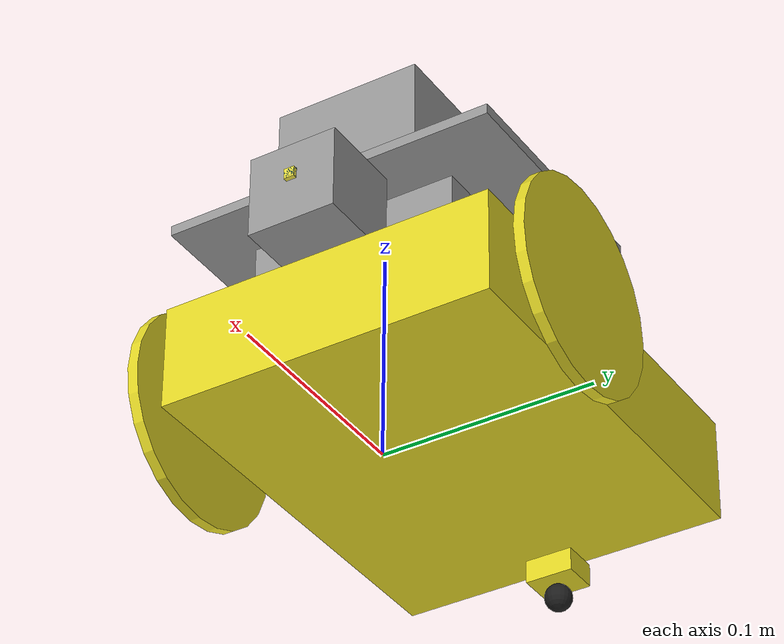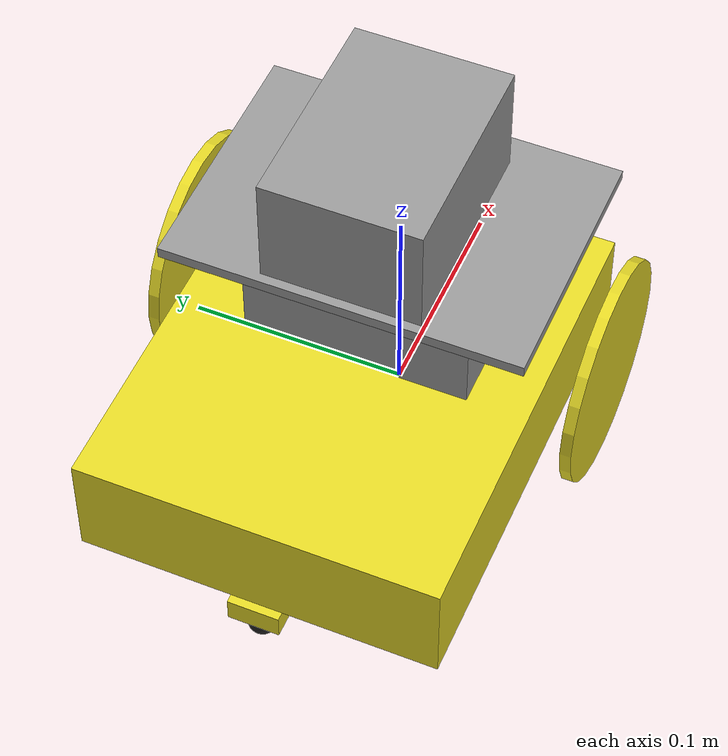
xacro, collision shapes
<?xml version="1.0"?>
<robot xmlns:xacro="http://www.ros.org/wiki/xacro" name="Puzzlebot_Hacker_Ed.">

<!-- files for gazebo costumization -->
<xacro:include filename="$(find puzzlebot_description)/urdf/jetson_lidar_ed/materials_jetson_lidar_ed.xacro" />
<xacro:include filename="$(find puzzlebot_description)/urdf/jetson_lidar_ed/parameters_jetson_lidar_ed_v1.xacro" />
<xacro:include filename="$(find puzzlebot_description)/urdf/jetson_lidar_ed/macros_jetson_lidar_ed.xacro" />
<xacro:include filename="$(find puzzlebot_description)/urdf/jetson_lidar_ed/puzzlebot_jetson_lidar_ed_v1.gazebo.xacro" />

<!--LINKS-->

<!-- Dummy link to fix robot chassis -->
    <link name="base_footprint">
    </link>

    <link name="base_link">
        <visual>
            <origin xyz="${chassis_mesh_pos_x} ${chassis_mesh_pos_y} ${chassis_mesh_pos_z}" rpy="${chassis_mesh_pos_r} ${chassis_mesh_pos_p} ${chassis_mesh_pos_w}"/>
            <geometry>
                <mesh filename="file://${mesh_puzzlebot_chassis}"/>
            </geometry>
            <material name="yellow"/>
        </visual>

        <collision>
            <origin xyz="${chassis_collision_pos_x} ${chassis_collision_pos_y} ${chassis_collision_pos_z}" rpy="${chassis_collision_pos_r} ${chassis_collision_pos_p} ${chassis_collision_pos_w}"/>
            <geometry>
                <box size="${chassis_length} ${chassis_width} ${chassis_height}"/>
            </geometry>
        </collision>

        <inertial>
            <origin xyz="-${chassis_inertia_pos_x} ${chassis_inertia_pos_y} ${chassis_inertia_pos_z}" rpy="${chassis_inertia_pos_r} ${chassis_inertia_pos_p} ${chassis_inertia_pos_w}"/>
            <mass value="${chassis_mass}"/>
            <xacro:box_inertia mass="${chassis_mass}" x="${chassis_length}" y="${chassis_width}" z="${chassis_height}" />
        </inertial>
    </link>

    <link name="wheel_left_link">
        <visual>
            <origin xyz="${wheel_mesh_pos_x} ${wheel_mesh_pos_y} ${wheel_mesh_pos_z}" rpy="${wheel_mesh_pos_r} ${wheel_mesh_pos_p} ${wheel_mesh_pos_w}" />
            <geometry>
                <mesh filename="file://${mesh_puzzlebot_wheel}"/>
            </geometry>
            <material name="yellow"/>
        </visual>

        <collision>
            <origin xyz="${wheel_collision_pos_x} ${wheel_collision_pos_y} ${wheel_collision_pos_z}" rpy="${wheel_collision_pos_r} ${wheel_collision_pos_p} ${wheel_collision_pos_w}"/>
            <geometry>
                <cylinder length="${wheel_height}" radius="${wheel_radius}" />
            </geometry>
        </collision>

        <inertial>
            <origin xyz="${wheel_inertia_pos_x} ${wheel_inertia_pos_y} ${wheel_inertia_pos_z}" rpy="${wheel_inertia_pos_r} ${wheel_inertia_pos_p} ${wheel_inertia_pos_w}"/>
            <mass value="${wheel_mass}"/>
            <xacro:cylinderical_tube_inertia r1="${wheel_radius}" r2="${wheel_radius/4.0}" height="${wheel_height}" mass="${wheel_mass}"/>
        </inertial>
    </link>

    <link name="wheel_right_link">
        <visual>
            <origin xyz="${wheel_mesh_pos_x} ${wheel_mesh_pos_y} ${wheel_mesh_pos_z}" rpy="${wheel_mesh_pos_r} -${wheel_mesh_pos_p} ${wheel_mesh_pos_w}" />
            <geometry>
                <mesh filename="file://${mesh_puzzlebot_wheel}"/>
            </geometry>
            <material name="yellow"/>
        </visual>

        <collision>
            <origin xyz="${wheel_collision_pos_x} ${wheel_collision_pos_y} ${wheel_collision_pos_z}" rpy="-${wheel_collision_pos_r} ${wheel_collision_pos_p} ${wheel_collision_pos_w}"/>
            <geometry>
                <cylinder length="${wheel_height}" radius="${wheel_radius}" />
            </geometry>
        </collision>

        <inertial>
            <origin xyz="${wheel_inertia_pos_x} ${wheel_inertia_pos_y} ${wheel_inertia_pos_z}" rpy="-${wheel_inertia_pos_r} ${wheel_inertia_pos_p} ${wheel_inertia_pos_w}"/>
            <mass value="${wheel_mass}"/>
            <xacro:cylinderical_tube_inertia r1="${wheel_radius}" r2="${wheel_radius/4.0}" height="${wheel_height}" mass="${wheel_mass}"/>
        </inertial>
    </link>

    <link name="caster_holder_link">
        <visual>
            <origin xyz="${casterholder_mesh_pos_x} ${casterholder_mesh_pos_y} ${casterholder_mesh_pos_z}" rpy="${casterholder_mesh_pos_r} ${casterholder_mesh_pos_p} ${casterholder_mesh_pos_w}"/>
            <geometry>
                <mesh filename="file://${mesh_puzzlebot_caster}"/>
            </geometry>
            <material name="yellow"/>
        </visual>

        <collision>
            <origin xyz="${casterholder_collision_pos_x} ${casterholder_collision_pos_y} ${casterholder_collision_pos_z}" rpy="${casterholder_collision_pos_r} ${casterholder_collision_pos_p} ${casterholder_collision_pos_w}"/>
            <geometry>
                <box size="${casterholder_length} ${casterholder_width} ${casterholder_height}"/>
            </geometry>
        </collision>

        <inertial>
            <origin xyz="${casterholder_inertia_pos_x} ${casterholder_inertia_pos_y} ${casterholder_inertia_pos_z}" rpy="${casterholder_inertia_pos_r} ${casterholder_inertia_pos_p} ${casterholder_inertia_pos_w}"/>
            <mass value="${casterholder_mass}"/>
            <xacro:box_inertia mass="${casterholder_mass}" x="${casterholder_length}" y="${casterholder_width}" z="${casterholder_height}" />
        </inertial>
    </link>

    <link name="wheel_caster_link">
        <collision>
            <origin xyz="${casterball_collision_pos_x} ${casterball_collision_pos_y} ${casterball_collision_pos_z}" rpy="${casterball_collision_pos_r} ${casterball_collision_pos_p} ${casterball_collision_pos_w}"/>
            <geometry>
                <sphere radius="${casterball_radius}"/>
            </geometry>
        </collision>

        <inertial>
            <origin xyz="${casterball_inertia_pos_x} ${casterball_inertia_pos_y} ${casterball_inertia_pos_z}" rpy="${casterball_inertia_pos_r} ${casterball_inertia_pos_p} ${casterball_inertia_pos_w}"/>
            <mass value="${casterball_mass}"/>
            <xacro:solid_sphere_inertia mass="${casterball_mass}" radius="${casterball_radius}" />
        </inertial>
    </link>

    <link name="motor_left_link">
        <visual>
            <origin xyz="${motor_mesh_pos_x} ${motor_mesh_pos_y} ${motor_mesh_pos_z}" rpy="${motor_mesh_pos_r} ${motor_mesh_pos_p} ${motor_mesh_pos_w}"/>
            <geometry>
                <mesh filename="file://${mesh_puzzlebot_motor_left}"/>
            </geometry>
            <material name="grey"/>
        </visual>

        <collision>
            <origin xyz="${motor_collision_pos_x} ${motor_collision_pos_y} ${motor_collision_pos_z}" rpy="${motor_collision_pos_r} ${motor_collision_pos_p} ${motor_collision_pos_w}"/>
            <geometry>
                <cylinder length="${motor_height}" radius="${motor_radius}" />
            </geometry>
        </collision>

        <inertial>
            <origin xyz="${motor_inertia_pos_x} ${motor_inertia_pos_y} ${motor_inertia_pos_z}" rpy="${motor_inertia_pos_r} ${motor_inertia_pos_p} ${motor_inertia_pos_w}"/>
            <mass value="${motor_mass}"/>
            <xacro:cylinder_inertia radius="${motor_radius}" height="${motor_height}" mass="${motor_mass}"/>
        </inertial>
    </link>

    <link name="motor_right_link">
        <visual>
            <origin xyz="${motor_mesh_pos_x} -${motor_mesh_pos_y} ${motor_mesh_pos_z}" rpy="${motor_mesh_pos_r} ${-motor_mesh_pos_p} ${motor_mesh_pos_w+PI}"/>
            <geometry>
                <mesh filename="file://${mesh_puzzlebot_motor_right}"/>
            </geometry>
            <material name="grey"/>
        </visual>

        <collision>
            <origin xyz="${motor_collision_pos_x} ${motor_collision_pos_y} ${motor_collision_pos_z}" rpy="${motor_collision_pos_r} ${motor_collision_pos_p} ${motor_collision_pos_w}"/>
            <geometry>
                <cylinder length="${motor_height}" radius="${motor_radius}" />
            </geometry>
        </collision>

        <inertial>
            <origin xyz="${motor_inertia_pos_x} -${motor_inertia_pos_y} ${motor_inertia_pos_z}" rpy="${motor_inertia_pos_r} ${motor_inertia_pos_p} ${motor_inertia_pos_w}"/>
            <mass value="${motor_mass}"/>
            <xacro:cylinder_inertia radius="${motor_radius}" height="${motor_height}" mass="${motor_mass}"/>
        </inertial>
    </link>

    <link name="powerbank_link">
        <visual>
            <origin xyz="${powerbank_mesh_pos_x} ${powerbank_mesh_pos_y} ${powerbank_mesh_pos_z}" rpy="${powerbank_mesh_pos_r} ${powerbank_mesh_pos_p} ${powerbank_mesh_pos_w}"/>
            <geometry>
                <mesh filename="file://${mesh_puzzlebot_battery}"/>
            </geometry>
            <material name="black"/>
        </visual>

        <collision>
            <origin xyz="${powerbank_collision_pos_x} ${powerbank_collision_pos_y} ${powerbank_collision_pos_z}" rpy="${powerbank_collision_pos_r} ${powerbank_collision_pos_p} ${powerbank_collision_pos_w}"/>
            <geometry>
                <box size="${powerbank_length} ${powerbank_width} ${powerbank_height}"/>
            </geometry>
        </collision>

        <inertial>
            <origin xyz="${powerbank_inertia_pos_x} ${powerbank_inertia_pos_y} ${powerbank_inertia_pos_z}" rpy="${powerbank_inertia_pos_r} ${powerbank_inertia_pos_p} ${powerbank_inertia_pos_w}"/>
            <mass value="${powerbank_mass}"/>
            <xacro:box_inertia mass="${powerbank_mass}" x="${powerbank_length}" y="${powerbank_width}" z="${powerbank_height}" />
        </inertial>
    </link>

    <link name="jetson_link">
        <visual>
            <origin xyz="${jetson_mesh_pos_x} ${jetson_mesh_pos_y} ${jetson_mesh_pos_z}" rpy="${jetson_mesh_pos_r} ${jetson_mesh_pos_p} ${jetson_mesh_pos_w}"/>
            <geometry>
                <mesh filename="file://${mesh_puzzlebot_jetson}"/>
            </geometry>
            <material name="grey"/>
        </visual>

        <collision>
            <origin xyz="${jetson_collision_pos_x} ${jetson_collision_pos_y} ${jetson_collision_pos_z}" rpy="${jetson_collision_pos_r} ${jetson_collision_pos_p} ${jetson_collision_pos_w}"/>
            <geometry>
                <box size="${jetson_length} ${jetson_width} ${jetson_height+jetson_offset}"/>
            </geometry>
        </collision>

        <inertial>
            <origin xyz="${jetson_inertia_pos_x} ${jetson_inertia_pos_y} ${jetson_inertia_pos_z}" rpy="${jetson_inertia_pos_r} ${jetson_inertia_pos_p} ${jetson_inertia_pos_w}"/>
            <mass value="${jetson_mass}"/>
            <xacro:box_inertia mass="${jetson_mass}" x="${jetson_length}" y="${jetson_width}" z="${jetson_height}" />
        </inertial>
    </link>

    <link name="camera_base_link">
        <visual>
            <origin xyz="${camera_base_mesh_pos_x} ${camera_base_mesh_pos_y} ${camera_base_mesh_pos_z}" rpy="${camera_base_mesh_pos_r} ${camera_base_mesh_pos_p} ${camera_base_mesh_pos_w}"/>
            <geometry>
                <mesh filename="file://${mesh_puzzlebot_camera}"/>
            </geometry>
            <material name="grey"/>
        </visual>

        <collision>
            <origin xyz="${camera_base_collision_pos_x} ${camera_base_collision_pos_y} ${camera_base_collision_pos_z}" rpy="${camera_base_collision_pos_r} ${camera_base_collision_pos_p} ${camera_base_collision_pos_w}"/>
            <geometry>
                <box size="${camera_base_length} ${camera_base_width} ${camera_base_height}"/>
            </geometry>
        </collision>

        <inertial>
            <origin xyz="${camera_base_inertia_pos_x} ${camera_base_inertia_pos_y} ${camera_base_inertia_pos_z}" rpy="${camera_base_inertia_pos_r} ${camera_base_inertia_pos_p} ${camera_base_inertia_pos_w}"/>
            <mass value="${camera_base_mass}"/>
            <xacro:box_inertia mass="${camera_base_mass}" x="${camera_base_length}" y="${camera_base_width}" z="${camera_base_height}" />
        </inertial>
    </link>

    <link name="camera_link">
        <collision>
            <origin xyz="${camera_collision_pos_x} ${camera_collision_pos_y} ${camera_collision_pos_z}" rpy="${camera_collision_pos_r} ${camera_collision_pos_p} ${camera_collision_pos_w}"/>
            <geometry>
                <box size="${camera_length} ${camera_width} ${camera_height}"/>
            </geometry>
        </collision>

        <inertial>
            <origin xyz="${camera_inertia_pos_x} ${camera_inertia_pos_y} ${camera_inertia_pos_z}" rpy="${camera_inertia_pos_r} ${camera_inertia_pos_p} ${camera_inertia_pos_w}"/>
            <mass value="${camera_mass}"/>
            <xacro:box_inertia mass="${camera_mass}" x="${camera_length}" y="${camera_width}" z="${camera_height}" />
        </inertial>
    </link>

    <link name="camera_link_optical">
        <collision>
            <origin xyz="${camera_collision_pos_x} ${camera_collision_pos_y} ${camera_collision_pos_z}" rpy="${camera_collision_pos_r} ${camera_collision_pos_p} ${camera_collision_pos_w}"/>
            <geometry>
                <box size="${camera_length} ${camera_width} ${camera_height}"/>
            </geometry>
        </collision>

        <inertial>
            <origin xyz="${camera_inertia_pos_x} ${camera_inertia_pos_y} ${camera_inertia_pos_z}" rpy="${camera_inertia_pos_r} ${camera_inertia_pos_p} ${camera_inertia_pos_w}"/>
            <mass value="${camera_mass}"/>
            <xacro:box_inertia mass="${camera_mass}" x="${camera_length}" y="${camera_width}" z="${camera_height}" />
        </inertial>
    </link>

    <link name="lidar_base_link">
        <visual>
            <origin xyz="${lidar_base_mesh_pos_x} ${lidar_base_mesh_pos_y} ${lidar_base_mesh_pos_z}" rpy="${lidar_base_mesh_pos_r} ${lidar_base_mesh_pos_p} ${lidar_base_mesh_pos_w}"/>
            <geometry>
                <mesh filename="file://${mesh_puzzlebot_lidar_base}"/>
            </geometry>
            <material name="grey"/>
        </visual>

        <collision>
            <origin xyz="${lidar_base_collision_pos_x} ${lidar_base_collision_pos_y} ${lidar_base_collision_pos_z}" rpy="${lidar_base_collision_pos_r} ${lidar_base_collision_pos_p} ${lidar_base_collision_pos_w}"/>
            <geometry>
                <box size="${lidar_base_length} ${lidar_base_width} ${lidar_base_height}"/>
            </geometry>
        </collision>

        <inertial>
            <origin xyz="${lidar_base_inertia_pos_x} ${lidar_base_inertia_pos_y} ${lidar_base_inertia_pos_z}" rpy="${lidar_base_inertia_pos_r} ${lidar_base_inertia_pos_p} ${lidar_base_inertia_pos_w}"/>
            <mass value="${lidar_base_mass}"/>
            <xacro:box_inertia mass="${lidar_base_mass}" x="${lidar_base_length}" y="${lidar_base_width}" z="${lidar_base_height}" />
        </inertial>
    </link>

    <link name="lidar_link">
        <visual>
            <origin xyz="${lidar_mesh_pos_x} ${lidar_mesh_pos_y} ${lidar_mesh_pos_z}" rpy="${lidar_mesh_pos_r} ${lidar_mesh_pos_p} ${lidar_mesh_pos_w}"/>
            <geometry>
                <mesh filename="file://${mesh_puzzlebot_lidar_sensor}"/>
            </geometry>
            <material name="grey"/>
        </visual>

        <collision>
            <origin xyz="${lidar_collision_pos_x} ${lidar_collision_pos_y} ${lidar_collision_pos_z}" rpy="${lidar_collision_pos_r} ${lidar_collision_pos_p} ${lidar_collision_pos_w}"/>
            <geometry>
                <box size="${lidar_length} ${lidar_width} ${lidar_height}"/>
            </geometry>
        </collision>

        <inertial>
            <origin xyz="${lidar_inertia_pos_x} ${lidar_inertia_pos_y} ${lidar_inertia_pos_z}" rpy="${lidar_inertia_pos_r} ${lidar_inertia_pos_p} ${lidar_inertia_pos_w}"/>
            <mass value="${lidar_mass}"/>
            <xacro:box_inertia mass="${lidar_mass}" x="${lidar_length}" y="${lidar_width}" z="${lidar_height}" />
        </inertial>
    </link>

<!--JOINTS-->

    <joint name="chassis_joint" type="fixed">
        <parent link="base_footprint"/>
        <child link="base_link"/>
        <origin xyz="${chassis_pos_x} ${chassis_pos_y} ${chassis_pos_z}" rpy="${chassis_pos_r} ${chassis_pos_p} ${chassis_pos_w}"/>
    </joint>

    <joint name="motor_left_joint" type="fixed">
        <parent link="base_link"/>
        <child link="motor_left_link"/>
        <origin xyz="${motor_pos_x} ${motor_pos_y} ${motor_pos_z}" rpy="${motor_pos_r} ${motor_pos_p} ${motor_pos_w}"/>
    </joint>

    <joint name="motor_right_joint" type="fixed">
        <parent link="base_link"/>
        <child link="motor_right_link"/>
        <origin xyz="${motor_pos_x} -${motor_pos_y} ${motor_pos_z}" rpy="${motor_pos_r} ${motor_pos_p} ${motor_pos_w}"/>
    </joint>

    <joint name="powerbank_joint" type="fixed">
        <parent link="base_link"/>
        <child link="powerbank_link"/>
        <origin xyz="-${powerbank_pos_x} ${powerbank_pos_y} -${powerbank_pos_z}" rpy="${powerbank_pos_r} ${powerbank_pos_p} ${powerbank_pos_w}"/>
    </joint>

    <joint name="jetson_joint" type="fixed">
        <parent link="base_link"/>
        <child link="jetson_link"/>
        <origin xyz="${jetson_pos_x} ${jetson_pos_y} ${jetson_pos_z}" rpy="${jetson_pos_r} ${jetson_pos_p} ${jetson_pos_w}"/>
    </joint>

    <joint name="camera_base_joint" type="fixed">
        <parent link="base_link"/>
        <child link="camera_base_link"/>
        <origin xyz="${camera_base_pos_x} ${camera_base_pos_y} ${camera_base_pos_z}" rpy="${camera_base_pos_r} ${camera_base_pos_p} ${camera_base_pos_w}"/>
    </joint>

    <joint name="camera_joint" type="fixed">
        <parent link="camera_base_link"/>
        <child link="camera_link"/>
        <origin xyz="${camera_pos_x} ${camera_pos_y} ${camera_pos_z}" rpy="${camera_pos_r} ${camera_pos_p} ${camera_pos_w}"/>
    </joint>

    <joint name="camera_joint_optical" type="fixed">
        <parent link="camera_link"/>
        <child link="camera_link_optical"/>
        <origin xyz="${camera_optical_pos_x} ${camera_optical_pos_y} ${camera_optical_pos_z}" rpy="${camera_optical_pos_r} ${camera_optical_pos_p} ${camera_optical_pos_w}"/>
    </joint>

    <joint name="lidar_base_joint" type="fixed">
        <parent link="base_link"/>
        <child link="lidar_base_link"/>
        <origin xyz="${lidar_base_pos_x} ${lidar_base_pos_y} ${lidar_base_pos_z}" rpy="${lidar_base_pos_r} ${lidar_base_pos_p} ${lidar_base_pos_w}"/>
    </joint>

    <joint name="lidar_joint" type="fixed">
        <parent link="lidar_base_link"/>
        <child link="lidar_link"/>
        <origin xyz="${lidar_pos_x} ${lidar_pos_y} ${lidar_pos_z}" rpy="${lidar_pos_r} ${lidar_pos_p} ${lidar_pos_w}"/>
    </joint>

    <joint name="wheel_right_joint" type="continuous">
        <parent link="base_link"/>
        <child link="wheel_right_link"/>
        <origin xyz="${wheel_pos_x} -${wheel_pos_y} ${wheel_pos_z}" rpy="-${wheel_pos_r} ${wheel_pos_p} ${wheel_pos_w}"/>
        <axis xyz="0 0 1"/>
    </joint>

    <joint name="wheel_left_joint" type="continuous">
        <parent link="base_link"/>
        <child link="wheel_left_link"/>
        <origin xyz="${wheel_pos_x} ${wheel_pos_y} ${wheel_pos_z}" rpy="-${wheel_pos_r} ${wheel_pos_p} ${wheel_pos_w}"/>
        <axis xyz="0 0 1"/>
    </joint>

    <joint name="caster_holder_joint" type="fixed">
        <parent link="base_link"/>
        <child link="caster_holder_link"/>
        <origin xyz="${casterholder_pos_x} ${casterholder_pos_y} ${casterholder_pos_z}" rpy="${casterholder_pos_r} ${casterholder_pos_p} ${casterholder_pos_w}"/>
    </joint>

    <joint name="wheel_caster_joint" type="fixed">
        <parent link="caster_holder_link"/>
        <child link="wheel_caster_link"/>
        <origin xyz="${casterball_pos_x} ${casterball_pos_y} ${casterball_pos_z}" rpy="${casterball_pos_r} ${casterball_pos_p} ${casterball_pos_w}"/>
    </joint>

<!--TRANSMISSIONS-->

<!-- TRANSMISSIONS (For a more complex model and it represents actuator attributes) -->
<transmission name="wheel_right_trans">
    <type>transmission_interface/SimpleTransmission</type>
    <joint name="wheel_right_joint">
    	<hardwareInterface>hardware_interface/VelocityJointInterface</hardwareInterface>
    </joint>
    <actuator name="wheel_right_motor">
      <hardwareInterface>VelocityJointInterface</hardwareInterface>
      <mechanicalReduction>34</mechanicalReduction>
    </actuator>
  </transmission>

<transmission name="wheel_left_trans">
    <type>transmission_interface/SimpleTransmission</type>
    <joint name="wheel_left_joint">
    	<hardwareInterface>hardware_interface/VelocityJointInterface</hardwareInterface>
    </joint>
    <actuator name="wheel_left_motor">
      <hardwareInterface>VelocityJointInterface</hardwareInterface>
      <mechanicalReduction>34</mechanicalReduction>
    </actuator>
</transmission>

</robot>

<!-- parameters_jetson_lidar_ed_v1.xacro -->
<robot xmlns:xacro="http://www.ros.org/wiki/xacro">

    <!--General parameters-->
    <xacro:property name="PI" value="3.1415926535897931"/>

    <!--Puzzlebot parameters-->
        <!--General parameters-->
            <xacro:property name="wheel_base_distance" value="0.19"/>

    <!--Chassis-->
        <!--Chassis Inertial/Collision parameters-->
            <xacro:property name="chassis_mass" value="0.351"/>
            <xacro:property name="chassis_length" value="0.2"/>
            <xacro:property name="chassis_width" value="0.16"/>
            <xacro:property name="chassis_height" value="0.0503"/>

            <xacro:property name="chassis_inertia_pos_x" value="0.00"/>
            <xacro:property name="chassis_inertia_pos_y" value="0.0"/>
            <xacro:property name="chassis_inertia_pos_z" value="0.00"/>
            <xacro:property name="chassis_inertia_pos_r" value="0.00"/>
            <xacro:property name="chassis_inertia_pos_p" value="0.0"/>
            <xacro:property name="chassis_inertia_pos_w" value="0.0"/>

            <xacro:property name="chassis_collision_pos_x" value="0.0"/>
            <xacro:property name="chassis_collision_pos_y" value="0.0"/>
            <xacro:property name="chassis_collision_pos_z" value="0.0"/>
            <xacro:property name="chassis_collision_pos_r" value="0.0"/>
            <xacro:property name="chassis_collision_pos_p" value="0.0"/>
            <xacro:property name="chassis_collision_pos_w" value="0.0"/>

        <!--Chassis Visual parameters-->
            <xacro:property name="chassis_mesh_pos_x" value="0.0"/>
            <xacro:property name="chassis_mesh_pos_y" value="0.0"/>
            <xacro:property name="chassis_mesh_pos_z" value="0.0"/>
            <xacro:property name="chassis_mesh_pos_r" value="${PI/2}"/>
            <xacro:property name="chassis_mesh_pos_p" value="0.0"/>
            <xacro:property name="chassis_mesh_pos_w" value="${PI/2}"/>

        <!--Chassis Joint parameters-->
            <xacro:property name="chassis_pos_x" value="-0.052"/>
            <xacro:property name="chassis_pos_y" value="0.0"/>
            <xacro:property name="chassis_pos_z" value="0.05"/>
            <xacro:property name="chassis_pos_r" value="0.0"/>
            <xacro:property name="chassis_pos_p" value="0.0"/>
            <xacro:property name="chassis_pos_w" value="0.0"/>

    <!--Caster Holder-->
        <!--Caster Holder Inertial/Collision parameters-->
            <xacro:property name="casterholder_mass" value="0.007"/>
            <xacro:property name="casterholder_length" value="0.0175"/>
            <xacro:property name="casterholder_width" value="0.023"/>
            <xacro:property name="casterholder_height" value="0.011150"/>

            <xacro:property name="casterholder_inertia_pos_x" value="0.0"/>
            <xacro:property name="casterholder_inertia_pos_y" value="0.0"/>
            <xacro:property name="casterholder_inertia_pos_z" value="0.0"/>
            <xacro:property name="casterholder_inertia_pos_r" value="0.0"/>
            <xacro:property name="casterholder_inertia_pos_p" value="0.0"/>
            <xacro:property name="casterholder_inertia_pos_w" value="0.0"/>

            <xacro:property name="casterholder_collision_pos_x" value="0.0"/>
            <xacro:property name="casterholder_collision_pos_y" value="0.0"/>
            <xacro:property name="casterholder_collision_pos_z" value="0.0"/>
            <xacro:property name="casterholder_collision_pos_r" value="0.0"/>
            <xacro:property name="casterholder_collision_pos_p" value="0.0"/>
            <xacro:property name="casterholder_collision_pos_w" value="0.0"/>

        <!--Caster Holder Visual parameters-->
            <xacro:property name="casterholder_mesh_pos_x" value="0.0"/>
            <xacro:property name="casterholder_mesh_pos_y" value="0.0"/>
            <xacro:property name="casterholder_mesh_pos_z" value="-0.0065"/>
            <xacro:property name="casterholder_mesh_pos_r" value="0.0"/>
            <xacro:property name="casterholder_mesh_pos_p" value="0.0"/>
            <xacro:property name="casterholder_mesh_pos_w" value="0.0"/>

        <!--Caster Holder Joint parameters-->
            <xacro:property name="casterholder_pos_x" value="-0.095"/>
            <xacro:property name="casterholder_pos_y" value="0.0"/>
            <xacro:property name="casterholder_pos_z" value="-0.030725"/>
            <xacro:property name="casterholder_pos_r" value="0.0"/>
            <xacro:property name="casterholder_pos_p" value="0.0"/>
            <xacro:property name="casterholder_pos_w" value="0.0"/>

    <!--Caster Ball-->
        <!--Caster Ball Inertial/Collision parameters-->
            <xacro:property name="casterball_mass" value="0.009"/>
            <xacro:property name="casterball_radius" value="0.0065"/>

            <xacro:property name="casterball_inertia_pos_x" value="0.0"/>
            <xacro:property name="casterball_inertia_pos_y" value="0.0"/>
            <xacro:property name="casterball_inertia_pos_z" value="0.0"/>
            <xacro:property name="casterball_inertia_pos_r" value="0.0"/>
            <xacro:property name="casterball_inertia_pos_p" value="0.0"/>
            <xacro:property name="casterball_inertia_pos_w" value="0.0"/>

            <xacro:property name="casterball_collision_pos_x" value="0.0"/>
            <xacro:property name="casterball_collision_pos_y" value="0.0"/>
            <xacro:property name="casterball_collision_pos_z" value="0.0"/>
            <xacro:property name="casterball_collision_pos_r" value="0.0"/>
            <xacro:property name="casterball_collision_pos_p" value="0.0"/>
            <xacro:property name="casterball_collision_pos_w" value="0.0"/>

        <!--Caster Ball Visual parameters-->
            <xacro:property name="casterball_mesh_pos_x" value="0.0"/>
            <xacro:property name="casterball_mesh_pos_y" value="0.0"/>
            <xacro:property name="casterball_mesh_pos_z" value="0.0"/>
            <xacro:property name="casterball_mesh_pos_r" value="0.0"/>
            <xacro:property name="casterball_mesh_pos_p" value="0.0"/>
            <xacro:property name="casterball_mesh_pos_w" value="0.0"/>

        <!--Caster Ball Joint parameters-->
            <xacro:property name="casterball_pos_x" value="0.0"/>
            <xacro:property name="casterball_pos_y" value="0.0"/>
            <xacro:property name="casterball_pos_z" value="-0.012538"/>
            <xacro:property name="casterball_pos_r" value="0.0"/>
            <xacro:property name="casterball_pos_p" value="0.0"/>
            <xacro:property name="casterball_pos_w" value="0.0"/>

    <!--Wheel-->
        <!--Wheel Inertial/Collision parameters-->
            <xacro:property name="wheel_mass" value="0.027"/>
            <xacro:property name="wheel_height" value="0.005"/>
            <xacro:property name="wheel_radius" value="0.05"/>

            <xacro:property name="wheel_inertia_pos_x" value="0.0"/>
            <xacro:property name="wheel_inertia_pos_y" value="0.0"/>
            <xacro:property name="wheel_inertia_pos_z" value="0.0"/>
            <xacro:property name="wheel_inertia_pos_r" value="0.0"/>
            <xacro:property name="wheel_inertia_pos_p" value="0.0"/>
            <xacro:property name="wheel_inertia_pos_w" value="0.0"/>

            <xacro:property name="wheel_collision_pos_x" value="0.0"/>
            <xacro:property name="wheel_collision_pos_y" value="0.0"/>
            <xacro:property name="wheel_collision_pos_z" value="0.0"/>
            <xacro:property name="wheel_collision_pos_r" value="0.0"/>
            <xacro:property name="wheel_collision_pos_p" value="0.0"/>
            <xacro:property name="wheel_collision_pos_w" value="0.0"/>

        <!--Wheel Visual parameters-->
            <xacro:property name="wheel_mesh_pos_x" value="0.0"/>
            <xacro:property name="wheel_mesh_pos_y" value="0.0"/>
            <xacro:property name="wheel_mesh_pos_z" value="0.0"/>
            <xacro:property name="wheel_mesh_pos_r" value="0.0"/>
            <xacro:property name="wheel_mesh_pos_p" value="${PI/2}"/>
            <xacro:property name="wheel_mesh_pos_w" value="0.0"/>

        <!--Wheel Joint parameters-->
            <xacro:property name="wheel_pos_x" value="0.052"/>
            <xacro:property name="wheel_pos_y" value="${wheel_base_distance/2}"/>
            <xacro:property name="wheel_pos_z" value="0.0"/>
            <xacro:property name="wheel_pos_r" value="${PI/2}"/>
            <xacro:property name="wheel_pos_p" value="0.0"/>
            <xacro:property name="wheel_pos_w" value="0.0"/>

    <!--Motor-->
        <!--Motor Inertial/Collision parameters-->
            <xacro:property name="motor_mass" value="0.1"/>
            <xacro:property name="motor_height" value="0.06645"/>
            <xacro:property name="motor_radius" value="0.0125"/>

            <xacro:property name="motor_inertia_pos_x" value="0.0"/>
            <xacro:property name="motor_inertia_pos_y" value="0.00825"/>
            <xacro:property name="motor_inertia_pos_z" value="0.0"/>
            <xacro:property name="motor_inertia_pos_r" value="${PI/2}"/>
            <xacro:property name="motor_inertia_pos_p" value="0.0"/>
            <xacro:property name="motor_inertia_pos_w" value="0.0"/>

            <xacro:property name="motor_collision_pos_x" value="0.0"/>
            <xacro:property name="motor_collision_pos_y" value="0.0"/>
            <xacro:property name="motor_collision_pos_z" value="0.0"/>
            <xacro:property name="motor_collision_pos_r" value="${PI/2}"/>
            <xacro:property name="motor_collision_pos_p" value="0.0"/>
            <xacro:property name="motor_collision_pos_w" value="0.0"/>

        <!--Motor Visual parameters-->
            <xacro:property name="motor_mesh_pos_x" value="0.0"/>
            <xacro:property name="motor_mesh_pos_y" value="0.009"/>
            <xacro:property name="motor_mesh_pos_z" value="0.0"/>
            <xacro:property name="motor_mesh_pos_r" value="0.0"/>
            <xacro:property name="motor_mesh_pos_p" value="0.0"/>
            <xacro:property name="motor_mesh_pos_w" value="${PI/2}"/>

        <!--Motor Joint parameters-->
            <xacro:property name="motor_pos_x" value="0.052"/>
            <xacro:property name="motor_pos_y" value="0.038775"/>
            <xacro:property name="motor_pos_z" value="0.0"/>
            <xacro:property name="motor_pos_r" value="0.0"/>
            <xacro:property name="motor_pos_p" value="0.0"/>
            <xacro:property name="motor_pos_w" value="0.0"/>

    <!--Powerbank-->
        <!--Powerbank Inertial/Collision parameters-->
            <xacro:property name="powerbank_mass" value="0.203"/>
            <xacro:property name="powerbank_length" value="0.13"/>
            <xacro:property name="powerbank_width" value="0.07"/>
            <xacro:property name="powerbank_height" value="0.012"/>

            <xacro:property name="powerbank_inertia_pos_x" value="0.0"/>
            <xacro:property name="powerbank_inertia_pos_y" value="0.0"/>
            <xacro:property name="powerbank_inertia_pos_z" value="0.0"/>
            <xacro:property name="powerbank_inertia_pos_r" value="0.0"/>
            <xacro:property name="powerbank_inertia_pos_p" value="0.0"/>
            <xacro:property name="powerbank_inertia_pos_w" value="0.0"/>

            <xacro:property name="powerbank_collision_pos_x" value="0.0"/>
            <xacro:property name="powerbank_collision_pos_y" value="0.0"/>
            <xacro:property name="powerbank_collision_pos_z" value="0.0"/>
            <xacro:property name="powerbank_collision_pos_r" value="0.0"/>
            <xacro:property name="powerbank_collision_pos_p" value="0.0"/>
            <xacro:property name="powerbank_collision_pos_w" value="0.0"/>

        <!--Powerbank Visual parameters-->
            <xacro:property name="powerbank_mesh_pos_x" value="0.0"/>
            <xacro:property name="powerbank_mesh_pos_y" value="0.0"/>
            <xacro:property name="powerbank_mesh_pos_z" value="0.0"/>
            <xacro:property name="powerbank_mesh_pos_r" value="${PI/2}"/>
            <xacro:property name="powerbank_mesh_pos_p" value="0.0"/>
            <xacro:property name="powerbank_mesh_pos_w" value="${PI/2}"/>

        <!--Powerbank Joint parameters-->
            <xacro:property name="powerbank_pos_x" value="0.03"/>
            <xacro:property name="powerbank_pos_y" value="0.00"/>
            <xacro:property name="powerbank_pos_z" value="0.01415"/>
            <xacro:property name="powerbank_pos_r" value="0.0"/>
            <xacro:property name="powerbank_pos_p" value="0.0"/>
            <xacro:property name="powerbank_pos_w" value="0.0"/>

    <!--NVIDIA Jetson-->
        <!--Jetson Inertial/Collision parameters-->
            <xacro:property name="jetson_mass" value="0.131"/>
            <xacro:property name="jetson_length" value="0.079"/>
            <xacro:property name="jetson_width" value="0.1"/>
            <xacro:property name="jetson_height" value="0.028271"/>
            <xacro:property name="jetson_offset" value="0.01"/>

            <xacro:property name="jetson_inertia_pos_x" value="0.0075"/>
            <xacro:property name="jetson_inertia_pos_y" value="0.00175"/>
            <xacro:property name="jetson_inertia_pos_z" value="${jetson_offset/2}"/>
            <xacro:property name="jetson_inertia_pos_r" value="0.0"/>
            <xacro:property name="jetson_inertia_pos_p" value="0.0"/>
            <xacro:property name="jetson_inertia_pos_w" value="0.0"/>

            <xacro:property name="jetson_collision_pos_x" value="0.0"/>
            <xacro:property name="jetson_collision_pos_y" value="0.0"/>
            <xacro:property name="jetson_collision_pos_z" value="0.0"/>
            <xacro:property name="jetson_collision_pos_r" value="0.0"/>
            <xacro:property name="jetson_collision_pos_p" value="0.0"/>
            <xacro:property name="jetson_collision_pos_w" value="0.0"/>

        <!--jetson Visual parameters-->
            <xacro:property name="jetson_mesh_pos_x" value="0.0"/>
            <xacro:property name="jetson_mesh_pos_y" value="0.0"/>
            <xacro:property name="jetson_mesh_pos_z" value="0.0"/>
            <xacro:property name="jetson_mesh_pos_r" value="0.0"/>
            <xacro:property name="jetson_mesh_pos_p" value="0.0"/>
            <xacro:property name="jetson_mesh_pos_w" value="0.0"/>

        <!--jetson Joint parameters-->
            <xacro:property name="jetson_pos_x" value="0.034311"/>
            <xacro:property name="jetson_pos_y" value="-0.003"/>
            <xacro:property name="jetson_pos_z" value="${chassis_height/2+(jetson_offset+jetson_height)/2}"/>
            <xacro:property name="jetson_pos_r" value="0.0"/>
            <xacro:property name="jetson_pos_p" value="0.0"/>
            <xacro:property name="jetson_pos_w" value="0.0"/>

    <!--Camera base-->
        <!--Camera base Inertial/Collision parameters-->
            <xacro:property name="camera_base_mass" value="0.035"/>
            <xacro:property name="camera_base_length" value="0.041"/>
            <xacro:property name="camera_base_width" value="0.042"/>
            <xacro:property name="camera_base_height" value="0.040"/>

            <xacro:property name="camera_base_inertia_pos_x" value="0.0"/>
            <xacro:property name="camera_base_inertia_pos_y" value="0.0"/>
            <xacro:property name="camera_base_inertia_pos_z" value="0.0"/>
            <xacro:property name="camera_base_inertia_pos_r" value="0.0"/>
            <xacro:property name="camera_base_inertia_pos_p" value="0.0"/>
            <xacro:property name="camera_base_inertia_pos_w" value="0.0"/>

            <xacro:property name="camera_base_collision_pos_x" value="0.0"/>
            <xacro:property name="camera_base_collision_pos_y" value="0.0"/>
            <xacro:property name="camera_base_collision_pos_z" value="0.0"/>
            <xacro:property name="camera_base_collision_pos_r" value="0.0"/>
            <xacro:property name="camera_base_collision_pos_p" value="0.0"/>
            <xacro:property name="camera_base_collision_pos_w" value="0.0"/>

        <!--Camera base Visual parameters-->
            <xacro:property name="camera_base_mesh_pos_x" value="0.0"/>
            <xacro:property name="camera_base_mesh_pos_y" value="0.0"/>
            <xacro:property name="camera_base_mesh_pos_z" value="0.0"/>
            <xacro:property name="camera_base_mesh_pos_r" value="0.0"/>
            <xacro:property name="camera_base_mesh_pos_p" value="0.0"/>
            <xacro:property name="camera_base_mesh_pos_w" value="0.0"/>

        <!--Camera base Joint parameters-->
            <xacro:property name="camera_base_pos_x" value="0.104757"/>
            <xacro:property name="camera_base_pos_y" value="0.00"/>
            <xacro:property name="camera_base_pos_z" value="0.045050"/>
            <xacro:property name="camera_base_pos_r" value="0.0"/>
            <xacro:property name="camera_base_pos_p" value="0.0"/>
            <xacro:property name="camera_base_pos_w" value="0.0"/>

    <!--Rpi Camera-->
        <!--Rpi Camera Inertial/Collision parameters-->
            <xacro:property name="camera_mass" value="1e-6"/>
            <xacro:property name="camera_length" value="0.005"/>
            <xacro:property name="camera_width" value="0.005"/>
            <xacro:property name="camera_height" value="0.005"/>

            <xacro:property name="camera_inertia_pos_x" value="0.0"/>
            <xacro:property name="camera_inertia_pos_y" value="0.0"/>
            <xacro:property name="camera_inertia_pos_z" value="0.0"/>
            <xacro:property name="camera_inertia_pos_r" value="0.0"/>
            <xacro:property name="camera_inertia_pos_p" value="0.0"/>
            <xacro:property name="camera_inertia_pos_w" value="0.0"/>

            <xacro:property name="camera_collision_pos_x" value="0.0"/>
            <xacro:property name="camera_collision_pos_y" value="0.0"/>
            <xacro:property name="camera_collision_pos_z" value="0.0"/>
            <xacro:property name="camera_collision_pos_r" value="0.0"/>
            <xacro:property name="camera_collision_pos_p" value="0.0"/>
            <xacro:property name="camera_collision_pos_w" value="0.0"/>

        <!--Rpi Camera Visual parameters-->
            <xacro:property name="camera_mesh_pos_x" value="0.0"/>
            <xacro:property name="camera_mesh_pos_y" value="0.0"/>
            <xacro:property name="camera_mesh_pos_z" value="0.0"/>
            <xacro:property name="camera_mesh_pos_r" value="0.0"/>
            <xacro:property name="camera_mesh_pos_p" value="0.0"/>
            <xacro:property name="camera_mesh_pos_w" value="0.0"/>

        <!--Rpi Camera Joint parameters-->
            <xacro:property name="camera_pos_x" value="0.0201"/>
            <xacro:property name="camera_pos_y" value="0.00"/>
            <xacro:property name="camera_pos_z" value="0.00345"/>
            <xacro:property name="camera_pos_r" value="0.0"/>
            <xacro:property name="camera_pos_p" value="0.0"/>
            <xacro:property name="camera_pos_w" value="0.0"/>

        <!--Rpi Camera Optical-->
        <!--Rpi Camera Joint parameters-->
            <xacro:property name="camera_optical_pos_x" value="0.0"/>
            <xacro:property name="camera_optical_pos_y" value="0.0"/>
            <xacro:property name="camera_optical_pos_z" value="0.0"/>
            <xacro:property name="camera_optical_pos_r" value="-${PI/2}"/>
            <xacro:property name="camera_optical_pos_p" value="0.0"/>
            <xacro:property name="camera_optical_pos_w" value="-${PI/2}"/>

    <!--Lidar Base-->
        <!--Lidar base Inertial/Collision parameters-->
            <xacro:property name="lidar_base_mass" value="0.1755"/>
            <xacro:property name="lidar_base_length" value="0.115"/>
            <xacro:property name="lidar_base_width" value="0.16"/>
            <xacro:property name="lidar_base_height" value="0.005"/>
            <xacro:property name="lidar_base_offset" value="0.040"/>

            <xacro:property name="lidar_base_inertia_pos_x" value="0.0"/>
            <xacro:property name="lidar_base_inertia_pos_y" value="0.0"/>
            <xacro:property name="lidar_base_inertia_pos_z" value="0.02125"/>
            <xacro:property name="lidar_base_inertia_pos_r" value="0.0"/>
            <xacro:property name="lidar_base_inertia_pos_p" value="0.0"/>
            <xacro:property name="lidar_base_inertia_pos_w" value="0.0"/>

            <xacro:property name="lidar_base_collision_pos_x" value="0.0"/>
            <xacro:property name="lidar_base_collision_pos_y" value="0.0"/>
            <xacro:property name="lidar_base_collision_pos_z" value="0.02125"/>
            <xacro:property name="lidar_base_collision_pos_r" value="0.0"/>
            <xacro:property name="lidar_base_collision_pos_p" value="0.0"/>
            <xacro:property name="lidar_base_collision_pos_w" value="0.0"/>

        <!--Lidar base Visual parameters-->
            <xacro:property name="lidar_base_mesh_pos_x" value="0.0"/>
            <xacro:property name="lidar_base_mesh_pos_y" value="0.0"/>
            <xacro:property name="lidar_base_mesh_pos_z" value="0.0"/>
            <xacro:property name="lidar_base_mesh_pos_r" value="0.0"/>
            <xacro:property name="lidar_base_mesh_pos_p" value="0.0"/>
            <xacro:property name="lidar_base_mesh_pos_w" value="0.0"/>

        <!--Lidar base Joint parameters-->
            <xacro:property name="lidar_base_pos_x" value="0.0425"/>
            <xacro:property name="lidar_base_pos_y" value="0.00"/>
            <xacro:property name="lidar_base_pos_z" value="0.0464"/>
            <xacro:property name="lidar_base_pos_r" value="0.0"/>
            <xacro:property name="lidar_base_pos_p" value="0.0"/>
            <xacro:property name="lidar_base_pos_w" value="0.0"/>

    <!--RPlidar Sensor-->
        <!--LRPlidar Sensor Inertial/Collision parameters-->
            <xacro:property name="lidar_mass" value="0.248"/>
            <xacro:property name="lidar_length" value="0.0968"/>
            <xacro:property name="lidar_width" value="0.0703"/>
            <xacro:property name="lidar_height" value="0.051"/>
            <xacro:property name="lidar_offset" value="0.004"/>

            <xacro:property name="lidar_inertia_pos_x" value="-0.0132395"/>
            <xacro:property name="lidar_inertia_pos_y" value="0.0"/>
            <xacro:property name="lidar_inertia_pos_z" value="-0.0165"/>
            <xacro:property name="lidar_inertia_pos_r" value="0.0"/>
            <xacro:property name="lidar_inertia_pos_p" value="0.0"/>
            <xacro:property name="lidar_inertia_pos_w" value="0.0"/>

            <xacro:property name="lidar_collision_pos_x" value="-0.0132395"/>
            <xacro:property name="lidar_collision_pos_y" value="0.0"/>
            <xacro:property name="lidar_collision_pos_z" value="-0.0165"/>
            <xacro:property name="lidar_collision_pos_r" value="0.0"/>
            <xacro:property name="lidar_collision_pos_p" value="0.0"/>
            <xacro:property name="lidar_collision_pos_w" value="0.0"/>

        <!--RPlidar Sensor Visual parameters-->
            <xacro:property name="lidar_mesh_pos_x" value="0.0"/>
            <xacro:property name="lidar_mesh_pos_y" value="0.0"/>
            <xacro:property name="lidar_mesh_pos_z" value="0.0"/>
            <xacro:property name="lidar_mesh_pos_r" value="0.0"/>
            <xacro:property name="lidar_mesh_pos_p" value="0.0"/>
            <xacro:property name="lidar_mesh_pos_w" value="0.0"/>

        <!--RPlidar Sensor Joint parameters-->
            <xacro:property name="lidar_pos_x" value="0.007137"/>
            <xacro:property name="lidar_pos_y" value="0.00"/>
            <xacro:property name="lidar_pos_z" value="0.06725"/>
            <xacro:property name="lidar_pos_r" value="0.0"/>
            <xacro:property name="lidar_pos_p" value="0.0"/>
            <xacro:property name="lidar_pos_w" value="0.0"/>

    <!--Meshes -->
        <xacro:property name="mesh_puzzlebot_chassis"  value="$(find puzzlebot_description)/meshes/bases/MCR2_puzzlebot_chassis_v1_2.stl" />
        <xacro:property name="mesh_puzzlebot_motor_left"  value="$(find puzzlebot_description)/meshes/misc/MCR2_dc_motor_left.stl" />
        <xacro:property name="mesh_puzzlebot_motor_right"  value="$(find puzzlebot_description)/meshes/misc/MCR2_dc_motor_right.stl" />
        <xacro:property name="mesh_puzzlebot_wheel"  value="$(find puzzlebot_description)/meshes/wheels/MCR2_puzzlebot_wheel.stl" />
        <xacro:property name="mesh_puzzlebot_caster"  value="$(find puzzlebot_description)/meshes/wheels/MCR2_puzzlebot_casterball.stl" />
        <xacro:property name="mesh_puzzlebot_battery"  value="$(find puzzlebot_description)/meshes/misc/MCR2_puzzlebot_battery.stl" />
        <xacro:property name="mesh_puzzlebot_jetson"  value="$(find puzzlebot_description)/meshes/misc/MCR2_nvidia_jetson_v1_2.stl" />
        <xacro:property name="mesh_puzzlebot_camera"  value="$(find puzzlebot_description)/meshes/sensors/MCR2_puzzlebot_camera.stl" />
        <xacro:property name="mesh_puzzlebot_lidar_base"  value="$(find puzzlebot_description)/meshes/bases/MCR2_puzzlebot_lidar_base_v1.stl" />
        <xacro:property name="mesh_puzzlebot_lidar_sensor"  value="$(find puzzlebot_description)/meshes/sensors/MCR2_puzzlebot_lidar_sensor_v1.stl" />

</robot>
